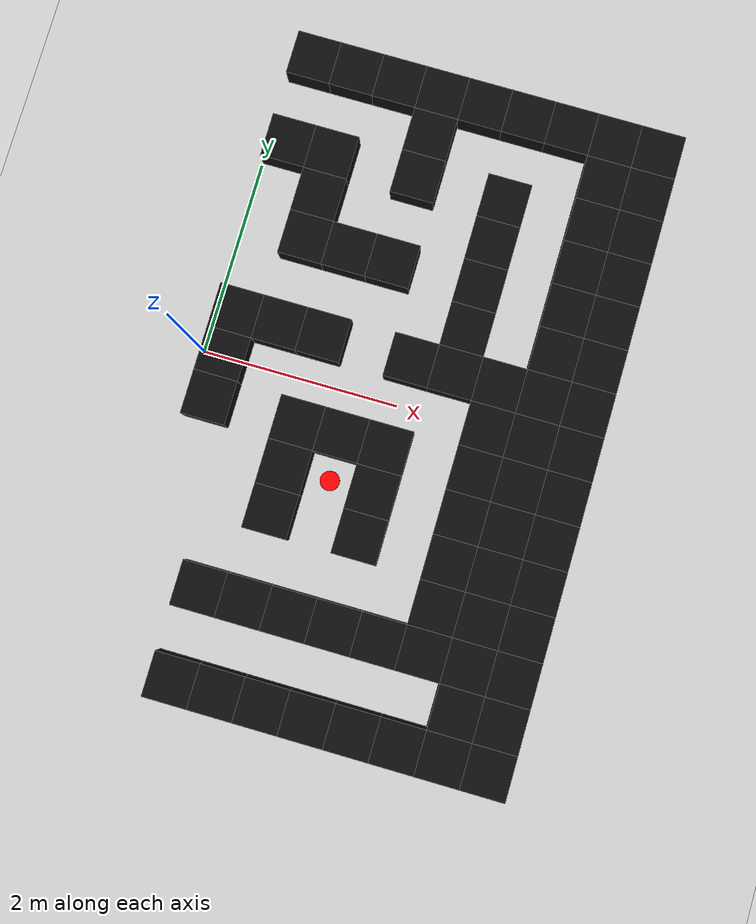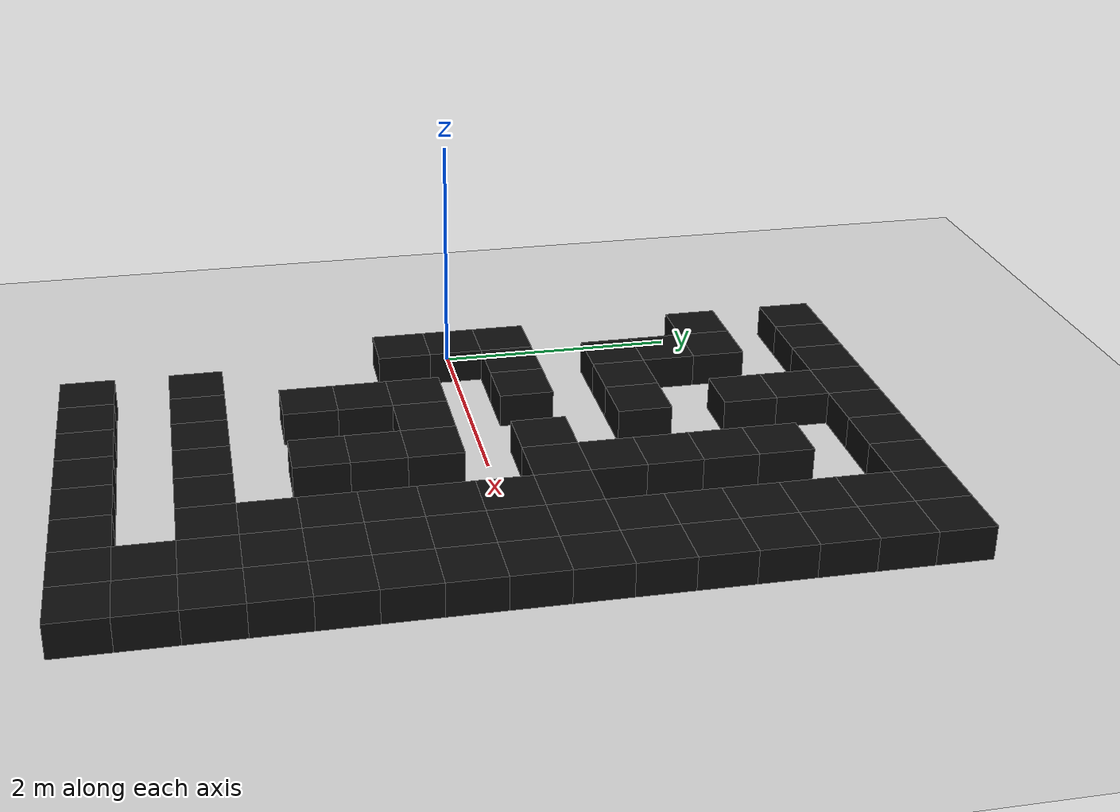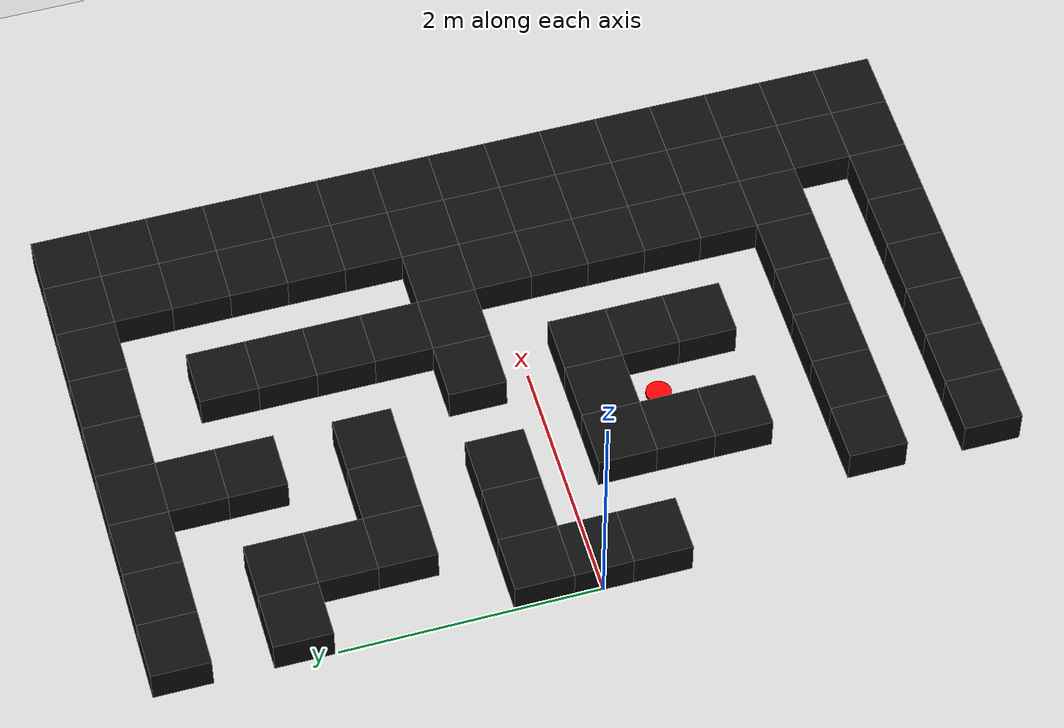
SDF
<sdf version="1.9">
 <world name="tangled_island_maze">
  <model name="ground_plane">
   <static>true</static>
   <link name="link">
    <collision name="collision">
     <geometry><plane><normal>0 0 1</normal><size>30 30</size></plane></geometry>
    </collision>
    <visual name="visual">
     <geometry><plane><normal>0 0 1</normal><size>30 30</size></plane></geometry>
     <material><ambient>0.82 0.82 0.82 1</ambient><diffuse>0.82 0.82 0.82 1</diffuse></material>
    </visual>
   </link>
  </model>
  <model name="wall_10">
   <static>true</static>
   <pose>0.675 -3.150 0.140 0 0 0</pose>
   <link name="link">
    <collision name="collision"><geometry><box><size>0.450 0.450 0.280</size></box></geometry></collision>
    <visual name="visual">
     <geometry><box><size>0.450 0.450 0.280</size></box></geometry>
     <material><ambient>0.05 0.05 0.05 1</ambient><diffuse>0.05 0.05 0.05 1</diffuse></material>
    </visual>
   </link>
  </model>
  <model name="wall_11">
   <static>true</static>
   <pose>1.125 -3.150 0.140 0 0 0</pose>
   <link name="link">
    <collision name="collision"><geometry><box><size>0.450 0.450 0.280</size></box></geometry></collision>
    <visual name="visual">
     <geometry><box><size>0.450 0.450 0.280</size></box></geometry>
     <material><ambient>0.05 0.05 0.05 1</ambient><diffuse>0.05 0.05 0.05 1</diffuse></material>
    </visual>
   </link>
  </model>
  <model name="wall_12">
   <static>true</static>
   <pose>1.575 -3.150 0.140 0 0 0</pose>
   <link name="link">
    <collision name="collision"><geometry><box><size>0.450 0.450 0.280</size></box></geometry></collision>
    <visual name="visual">
     <geometry><box><size>0.450 0.450 0.280</size></box></geometry>
     <material><ambient>0.05 0.05 0.05 1</ambient><diffuse>0.05 0.05 0.05 1</diffuse></material>
    </visual>
   </link>
  </model>
  <model name="wall_13">
   <static>true</static>
   <pose>2.025 -3.150 0.140 0 0 0</pose>
   <link name="link">
    <collision name="collision"><geometry><box><size>0.450 0.450 0.280</size></box></geometry></collision>
    <visual name="visual">
     <geometry><box><size>0.450 0.450 0.280</size></box></geometry>
     <material><ambient>0.05 0.05 0.05 1</ambient><diffuse>0.05 0.05 0.05 1</diffuse></material>
    </visual>
   </link>
  </model>
  <model name="wall_14">
   <static>true</static>
   <pose>2.475 -3.150 0.140 0 0 0</pose>
   <link name="link">
    <collision name="collision"><geometry><box><size>0.450 0.450 0.280</size></box></geometry></collision>
    <visual name="visual">
     <geometry><box><size>0.450 0.450 0.280</size></box></geometry>
     <material><ambient>0.05 0.05 0.05 1</ambient><diffuse>0.05 0.05 0.05 1</diffuse></material>
    </visual>
   </link>
  </model>
  <model name="wall_15">
   <static>true</static>
   <pose>2.925 -3.150 0.140 0 0 0</pose>
   <link name="link">
    <collision name="collision"><geometry><box><size>0.450 0.450 0.280</size></box></geometry></collision>
    <visual name="visual">
     <geometry><box><size>0.450 0.450 0.280</size></box></geometry>
     <material><ambient>0.05 0.05 0.05 1</ambient><diffuse>0.05 0.05 0.05 1</diffuse></material>
    </visual>
   </link>
  </model>
  <model name="wall_16">
   <static>true</static>
   <pose>3.375 -3.150 0.140 0 0 0</pose>
   <link name="link">
    <collision name="collision"><geometry><box><size>0.450 0.450 0.280</size></box></geometry></collision>
    <visual name="visual">
     <geometry><box><size>0.450 0.450 0.280</size></box></geometry>
     <material><ambient>0.05 0.05 0.05 1</ambient><diffuse>0.05 0.05 0.05 1</diffuse></material>
    </visual>
   </link>
  </model>
  <model name="wall_17">
   <static>true</static>
   <pose>3.825 -3.150 0.140 0 0 0</pose>
   <link name="link">
    <collision name="collision"><geometry><box><size>0.450 0.450 0.280</size></box></geometry></collision>
    <visual name="visual">
     <geometry><box><size>0.450 0.450 0.280</size></box></geometry>
     <material><ambient>0.05 0.05 0.05 1</ambient><diffuse>0.05 0.05 0.05 1</diffuse></material>
    </visual>
   </link>
  </model>
  <model name="wall_19">
   <static>true</static>
   <pose>3.375 -2.700 0.140 0 0 0</pose>
   <link name="link">
    <collision name="collision"><geometry><box><size>0.450 0.450 0.280</size></box></geometry></collision>
    <visual name="visual">
     <geometry><box><size>0.450 0.450 0.280</size></box></geometry>
     <material><ambient>0.05 0.05 0.05 1</ambient><diffuse>0.05 0.05 0.05 1</diffuse></material>
    </visual>
   </link>
  </model>
  <model name="wall_20">
   <static>true</static>
   <pose>3.825 -2.700 0.140 0 0 0</pose>
   <link name="link">
    <collision name="collision"><geometry><box><size>0.450 0.450 0.280</size></box></geometry></collision>
    <visual name="visual">
     <geometry><box><size>0.450 0.450 0.280</size></box></geometry>
     <material><ambient>0.05 0.05 0.05 1</ambient><diffuse>0.05 0.05 0.05 1</diffuse></material>
    </visual>
   </link>
  </model>
  <model name="wall_29">
   <static>true</static>
   <pose>0.675 -2.250 0.140 0 0 0</pose>
   <link name="link">
    <collision name="collision"><geometry><box><size>0.450 0.450 0.280</size></box></geometry></collision>
    <visual name="visual">
     <geometry><box><size>0.450 0.450 0.280</size></box></geometry>
     <material><ambient>0.05 0.05 0.05 1</ambient><diffuse>0.05 0.05 0.05 1</diffuse></material>
    </visual>
   </link>
  </model>
  <model name="wall_30">
   <static>true</static>
   <pose>1.125 -2.250 0.140 0 0 0</pose>
   <link name="link">
    <collision name="collision"><geometry><box><size>0.450 0.450 0.280</size></box></geometry></collision>
    <visual name="visual">
     <geometry><box><size>0.450 0.450 0.280</size></box></geometry>
     <material><ambient>0.05 0.05 0.05 1</ambient><diffuse>0.05 0.05 0.05 1</diffuse></material>
    </visual>
   </link>
  </model>
  <model name="wall_31">
   <static>true</static>
   <pose>1.575 -2.250 0.140 0 0 0</pose>
   <link name="link">
    <collision name="collision"><geometry><box><size>0.450 0.450 0.280</size></box></geometry></collision>
    <visual name="visual">
     <geometry><box><size>0.450 0.450 0.280</size></box></geometry>
     <material><ambient>0.05 0.05 0.05 1</ambient><diffuse>0.05 0.05 0.05 1</diffuse></material>
    </visual>
   </link>
  </model>
  <model name="wall_32">
   <static>true</static>
   <pose>2.025 -2.250 0.140 0 0 0</pose>
   <link name="link">
    <collision name="collision"><geometry><box><size>0.450 0.450 0.280</size></box></geometry></collision>
    <visual name="visual">
     <geometry><box><size>0.450 0.450 0.280</size></box></geometry>
     <material><ambient>0.05 0.05 0.05 1</ambient><diffuse>0.05 0.05 0.05 1</diffuse></material>
    </visual>
   </link>
  </model>
  <model name="wall_33">
   <static>true</static>
   <pose>2.475 -2.250 0.140 0 0 0</pose>
   <link name="link">
    <collision name="collision"><geometry><box><size>0.450 0.450 0.280</size></box></geometry></collision>
    <visual name="visual">
     <geometry><box><size>0.450 0.450 0.280</size></box></geometry>
     <material><ambient>0.05 0.05 0.05 1</ambient><diffuse>0.05 0.05 0.05 1</diffuse></material>
    </visual>
   </link>
  </model>
  <model name="wall_34">
   <static>true</static>
   <pose>2.925 -2.250 0.140 0 0 0</pose>
   <link name="link">
    <collision name="collision"><geometry><box><size>0.450 0.450 0.280</size></box></geometry></collision>
    <visual name="visual">
     <geometry><box><size>0.450 0.450 0.280</size></box></geometry>
     <material><ambient>0.05 0.05 0.05 1</ambient><diffuse>0.05 0.05 0.05 1</diffuse></material>
    </visual>
   </link>
  </model>
  <model name="wall_35">
   <static>true</static>
   <pose>3.375 -2.250 0.140 0 0 0</pose>
   <link name="link">
    <collision name="collision"><geometry><box><size>0.450 0.450 0.280</size></box></geometry></collision>
    <visual name="visual">
     <geometry><box><size>0.450 0.450 0.280</size></box></geometry>
     <material><ambient>0.05 0.05 0.05 1</ambient><diffuse>0.05 0.05 0.05 1</diffuse></material>
    </visual>
   </link>
  </model>
  <model name="wall_36">
   <static>true</static>
   <pose>3.825 -2.250 0.140 0 0 0</pose>
   <link name="link">
    <collision name="collision"><geometry><box><size>0.450 0.450 0.280</size></box></geometry></collision>
    <visual name="visual">
     <geometry><box><size>0.450 0.450 0.280</size></box></geometry>
     <material><ambient>0.05 0.05 0.05 1</ambient><diffuse>0.05 0.05 0.05 1</diffuse></material>
    </visual>
   </link>
  </model>
  <model name="wall_40">
   <static>true</static>
   <pose>2.925 -1.800 0.140 0 0 0</pose>
   <link name="link">
    <collision name="collision"><geometry><box><size>0.450 0.450 0.280</size></box></geometry></collision>
    <visual name="visual">
     <geometry><box><size>0.450 0.450 0.280</size></box></geometry>
     <material><ambient>0.05 0.05 0.05 1</ambient><diffuse>0.05 0.05 0.05 1</diffuse></material>
    </visual>
   </link>
  </model>
  <model name="wall_41">
   <static>true</static>
   <pose>3.375 -1.800 0.140 0 0 0</pose>
   <link name="link">
    <collision name="collision"><geometry><box><size>0.450 0.450 0.280</size></box></geometry></collision>
    <visual name="visual">
     <geometry><box><size>0.450 0.450 0.280</size></box></geometry>
     <material><ambient>0.05 0.05 0.05 1</ambient><diffuse>0.05 0.05 0.05 1</diffuse></material>
    </visual>
   </link>
  </model>
  <model name="wall_42">
   <static>true</static>
   <pose>3.825 -1.800 0.140 0 0 0</pose>
   <link name="link">
    <collision name="collision"><geometry><box><size>0.450 0.450 0.280</size></box></geometry></collision>
    <visual name="visual">
     <geometry><box><size>0.450 0.450 0.280</size></box></geometry>
     <material><ambient>0.05 0.05 0.05 1</ambient><diffuse>0.05 0.05 0.05 1</diffuse></material>
    </visual>
   </link>
  </model>
  <model name="wall_52">
   <static>true</static>
   <pose>1.125 -1.350 0.140 0 0 0</pose>
   <link name="link">
    <collision name="collision"><geometry><box><size>0.450 0.450 0.280</size></box></geometry></collision>
    <visual name="visual">
     <geometry><box><size>0.450 0.450 0.280</size></box></geometry>
     <material><ambient>0.05 0.05 0.05 1</ambient><diffuse>0.05 0.05 0.05 1</diffuse></material>
    </visual>
   </link>
  </model>
  <model name="wall_53">
   <static>true</static>
   <pose>2.025 -1.350 0.140 0 0 0</pose>
   <link name="link">
    <collision name="collision"><geometry><box><size>0.450 0.450 0.280</size></box></geometry></collision>
    <visual name="visual">
     <geometry><box><size>0.450 0.450 0.280</size></box></geometry>
     <material><ambient>0.05 0.05 0.05 1</ambient><diffuse>0.05 0.05 0.05 1</diffuse></material>
    </visual>
   </link>
  </model>
  <model name="wall_54">
   <static>true</static>
   <pose>2.925 -1.350 0.140 0 0 0</pose>
   <link name="link">
    <collision name="collision"><geometry><box><size>0.450 0.450 0.280</size></box></geometry></collision>
    <visual name="visual">
     <geometry><box><size>0.450 0.450 0.280</size></box></geometry>
     <material><ambient>0.05 0.05 0.05 1</ambient><diffuse>0.05 0.05 0.05 1</diffuse></material>
    </visual>
   </link>
  </model>
  <model name="wall_55">
   <static>true</static>
   <pose>3.375 -1.350 0.140 0 0 0</pose>
   <link name="link">
    <collision name="collision"><geometry><box><size>0.450 0.450 0.280</size></box></geometry></collision>
    <visual name="visual">
     <geometry><box><size>0.450 0.450 0.280</size></box></geometry>
     <material><ambient>0.05 0.05 0.05 1</ambient><diffuse>0.05 0.05 0.05 1</diffuse></material>
    </visual>
   </link>
  </model>
  <model name="wall_56">
   <static>true</static>
   <pose>3.825 -1.350 0.140 0 0 0</pose>
   <link name="link">
    <collision name="collision"><geometry><box><size>0.450 0.450 0.280</size></box></geometry></collision>
    <visual name="visual">
     <geometry><box><size>0.450 0.450 0.280</size></box></geometry>
     <material><ambient>0.05 0.05 0.05 1</ambient><diffuse>0.05 0.05 0.05 1</diffuse></material>
    </visual>
   </link>
  </model>
  <model name="wall_60">
   <static>true</static>
   <pose>1.125 -0.900 0.140 0 0 0</pose>
   <link name="link">
    <collision name="collision"><geometry><box><size>0.450 0.450 0.280</size></box></geometry></collision>
    <visual name="visual">
     <geometry><box><size>0.450 0.450 0.280</size></box></geometry>
     <material><ambient>0.05 0.05 0.05 1</ambient><diffuse>0.05 0.05 0.05 1</diffuse></material>
    </visual>
   </link>
  </model>
  <model name="wall_61">
   <static>true</static>
   <pose>2.025 -0.900 0.140 0 0 0</pose>
   <link name="link">
    <collision name="collision"><geometry><box><size>0.450 0.450 0.280</size></box></geometry></collision>
    <visual name="visual">
     <geometry><box><size>0.450 0.450 0.280</size></box></geometry>
     <material><ambient>0.05 0.05 0.05 1</ambient><diffuse>0.05 0.05 0.05 1</diffuse></material>
    </visual>
   </link>
  </model>
  <model name="wall_62">
   <static>true</static>
   <pose>2.925 -0.900 0.140 0 0 0</pose>
   <link name="link">
    <collision name="collision"><geometry><box><size>0.450 0.450 0.280</size></box></geometry></collision>
    <visual name="visual">
     <geometry><box><size>0.450 0.450 0.280</size></box></geometry>
     <material><ambient>0.05 0.05 0.05 1</ambient><diffuse>0.05 0.05 0.05 1</diffuse></material>
    </visual>
   </link>
  </model>
  <model name="wall_63">
   <static>true</static>
   <pose>3.375 -0.900 0.140 0 0 0</pose>
   <link name="link">
    <collision name="collision"><geometry><box><size>0.450 0.450 0.280</size></box></geometry></collision>
    <visual name="visual">
     <geometry><box><size>0.450 0.450 0.280</size></box></geometry>
     <material><ambient>0.05 0.05 0.05 1</ambient><diffuse>0.05 0.05 0.05 1</diffuse></material>
    </visual>
   </link>
  </model>
  <model name="wall_64">
   <static>true</static>
   <pose>3.825 -0.900 0.140 0 0 0</pose>
   <link name="link">
    <collision name="collision"><geometry><box><size>0.450 0.450 0.280</size></box></geometry></collision>
    <visual name="visual">
     <geometry><box><size>0.450 0.450 0.280</size></box></geometry>
     <material><ambient>0.05 0.05 0.05 1</ambient><diffuse>0.05 0.05 0.05 1</diffuse></material>
    </visual>
   </link>
  </model>
  <model name="wall_72">
   <static>true</static>
   <pose>0.225 -0.450 0.140 0 0 0</pose>
   <link name="link">
    <collision name="collision"><geometry><box><size>0.450 0.450 0.280</size></box></geometry></collision>
    <visual name="visual">
     <geometry><box><size>0.450 0.450 0.280</size></box></geometry>
     <material><ambient>0.05 0.05 0.05 1</ambient><diffuse>0.05 0.05 0.05 1</diffuse></material>
    </visual>
   </link>
  </model>
  <model name="wall_73">
   <static>true</static>
   <pose>1.125 -0.450 0.140 0 0 0</pose>
   <link name="link">
    <collision name="collision"><geometry><box><size>0.450 0.450 0.280</size></box></geometry></collision>
    <visual name="visual">
     <geometry><box><size>0.450 0.450 0.280</size></box></geometry>
     <material><ambient>0.05 0.05 0.05 1</ambient><diffuse>0.05 0.05 0.05 1</diffuse></material>
    </visual>
   </link>
  </model>
  <model name="wall_74">
   <static>true</static>
   <pose>1.575 -0.450 0.140 0 0 0</pose>
   <link name="link">
    <collision name="collision"><geometry><box><size>0.450 0.450 0.280</size></box></geometry></collision>
    <visual name="visual">
     <geometry><box><size>0.450 0.450 0.280</size></box></geometry>
     <material><ambient>0.05 0.05 0.05 1</ambient><diffuse>0.05 0.05 0.05 1</diffuse></material>
    </visual>
   </link>
  </model>
  <model name="wall_75">
   <static>true</static>
   <pose>2.025 -0.450 0.140 0 0 0</pose>
   <link name="link">
    <collision name="collision"><geometry><box><size>0.450 0.450 0.280</size></box></geometry></collision>
    <visual name="visual">
     <geometry><box><size>0.450 0.450 0.280</size></box></geometry>
     <material><ambient>0.05 0.05 0.05 1</ambient><diffuse>0.05 0.05 0.05 1</diffuse></material>
    </visual>
   </link>
  </model>
  <model name="wall_76">
   <static>true</static>
   <pose>2.925 -0.450 0.140 0 0 0</pose>
   <link name="link">
    <collision name="collision"><geometry><box><size>0.450 0.450 0.280</size></box></geometry></collision>
    <visual name="visual">
     <geometry><box><size>0.450 0.450 0.280</size></box></geometry>
     <material><ambient>0.05 0.05 0.05 1</ambient><diffuse>0.05 0.05 0.05 1</diffuse></material>
    </visual>
   </link>
  </model>
  <model name="wall_77">
   <static>true</static>
   <pose>3.375 -0.450 0.140 0 0 0</pose>
   <link name="link">
    <collision name="collision"><geometry><box><size>0.450 0.450 0.280</size></box></geometry></collision>
    <visual name="visual">
     <geometry><box><size>0.450 0.450 0.280</size></box></geometry>
     <material><ambient>0.05 0.05 0.05 1</ambient><diffuse>0.05 0.05 0.05 1</diffuse></material>
    </visual>
   </link>
  </model>
  <model name="wall_78">
   <static>true</static>
   <pose>3.825 -0.450 0.140 0 0 0</pose>
   <link name="link">
    <collision name="collision"><geometry><box><size>0.450 0.450 0.280</size></box></geometry></collision>
    <visual name="visual">
     <geometry><box><size>0.450 0.450 0.280</size></box></geometry>
     <material><ambient>0.05 0.05 0.05 1</ambient><diffuse>0.05 0.05 0.05 1</diffuse></material>
    </visual>
   </link>
  </model>
  <model name="wall_82">
   <static>true</static>
   <pose>0.225 0.000 0.140 0 0 0</pose>
   <link name="link">
    <collision name="collision"><geometry><box><size>0.450 0.450 0.280</size></box></geometry></collision>
    <visual name="visual">
     <geometry><box><size>0.450 0.450 0.280</size></box></geometry>
     <material><ambient>0.05 0.05 0.05 1</ambient><diffuse>0.05 0.05 0.05 1</diffuse></material>
    </visual>
   </link>
  </model>
  <model name="wall_83">
   <static>true</static>
   <pose>2.925 0.000 0.140 0 0 0</pose>
   <link name="link">
    <collision name="collision"><geometry><box><size>0.450 0.450 0.280</size></box></geometry></collision>
    <visual name="visual">
     <geometry><box><size>0.450 0.450 0.280</size></box></geometry>
     <material><ambient>0.05 0.05 0.05 1</ambient><diffuse>0.05 0.05 0.05 1</diffuse></material>
    </visual>
   </link>
  </model>
  <model name="wall_84">
   <static>true</static>
   <pose>3.375 0.000 0.140 0 0 0</pose>
   <link name="link">
    <collision name="collision"><geometry><box><size>0.450 0.450 0.280</size></box></geometry></collision>
    <visual name="visual">
     <geometry><box><size>0.450 0.450 0.280</size></box></geometry>
     <material><ambient>0.05 0.05 0.05 1</ambient><diffuse>0.05 0.05 0.05 1</diffuse></material>
    </visual>
   </link>
  </model>
  <model name="wall_85">
   <static>true</static>
   <pose>3.825 0.000 0.140 0 0 0</pose>
   <link name="link">
    <collision name="collision"><geometry><box><size>0.450 0.450 0.280</size></box></geometry></collision>
    <visual name="visual">
     <geometry><box><size>0.450 0.450 0.280</size></box></geometry>
     <material><ambient>0.05 0.05 0.05 1</ambient><diffuse>0.05 0.05 0.05 1</diffuse></material>
    </visual>
   </link>
  </model>
  <model name="wall_91">
   <static>true</static>
   <pose>0.225 0.450 0.140 0 0 0</pose>
   <link name="link">
    <collision name="collision"><geometry><box><size>0.450 0.450 0.280</size></box></geometry></collision>
    <visual name="visual">
     <geometry><box><size>0.450 0.450 0.280</size></box></geometry>
     <material><ambient>0.05 0.05 0.05 1</ambient><diffuse>0.05 0.05 0.05 1</diffuse></material>
    </visual>
   </link>
  </model>
  <model name="wall_92">
   <static>true</static>
   <pose>0.675 0.450 0.140 0 0 0</pose>
   <link name="link">
    <collision name="collision"><geometry><box><size>0.450 0.450 0.280</size></box></geometry></collision>
    <visual name="visual">
     <geometry><box><size>0.450 0.450 0.280</size></box></geometry>
     <material><ambient>0.05 0.05 0.05 1</ambient><diffuse>0.05 0.05 0.05 1</diffuse></material>
    </visual>
   </link>
  </model>
  <model name="wall_93">
   <static>true</static>
   <pose>1.125 0.450 0.140 0 0 0</pose>
   <link name="link">
    <collision name="collision"><geometry><box><size>0.450 0.450 0.280</size></box></geometry></collision>
    <visual name="visual">
     <geometry><box><size>0.450 0.450 0.280</size></box></geometry>
     <material><ambient>0.05 0.05 0.05 1</ambient><diffuse>0.05 0.05 0.05 1</diffuse></material>
    </visual>
   </link>
  </model>
  <model name="wall_94">
   <static>true</static>
   <pose>2.025 0.450 0.140 0 0 0</pose>
   <link name="link">
    <collision name="collision"><geometry><box><size>0.450 0.450 0.280</size></box></geometry></collision>
    <visual name="visual">
     <geometry><box><size>0.450 0.450 0.280</size></box></geometry>
     <material><ambient>0.05 0.05 0.05 1</ambient><diffuse>0.05 0.05 0.05 1</diffuse></material>
    </visual>
   </link>
  </model>
  <model name="wall_95">
   <static>true</static>
   <pose>2.475 0.450 0.140 0 0 0</pose>
   <link name="link">
    <collision name="collision"><geometry><box><size>0.450 0.450 0.280</size></box></geometry></collision>
    <visual name="visual">
     <geometry><box><size>0.450 0.450 0.280</size></box></geometry>
     <material><ambient>0.05 0.05 0.05 1</ambient><diffuse>0.05 0.05 0.05 1</diffuse></material>
    </visual>
   </link>
  </model>
  <model name="wall_96">
   <static>true</static>
   <pose>2.925 0.450 0.140 0 0 0</pose>
   <link name="link">
    <collision name="collision"><geometry><box><size>0.450 0.450 0.280</size></box></geometry></collision>
    <visual name="visual">
     <geometry><box><size>0.450 0.450 0.280</size></box></geometry>
     <material><ambient>0.05 0.05 0.05 1</ambient><diffuse>0.05 0.05 0.05 1</diffuse></material>
    </visual>
   </link>
  </model>
  <model name="wall_97">
   <static>true</static>
   <pose>3.375 0.450 0.140 0 0 0</pose>
   <link name="link">
    <collision name="collision"><geometry><box><size>0.450 0.450 0.280</size></box></geometry></collision>
    <visual name="visual">
     <geometry><box><size>0.450 0.450 0.280</size></box></geometry>
     <material><ambient>0.05 0.05 0.05 1</ambient><diffuse>0.05 0.05 0.05 1</diffuse></material>
    </visual>
   </link>
  </model>
  <model name="wall_98">
   <static>true</static>
   <pose>3.825 0.450 0.140 0 0 0</pose>
   <link name="link">
    <collision name="collision"><geometry><box><size>0.450 0.450 0.280</size></box></geometry></collision>
    <visual name="visual">
     <geometry><box><size>0.450 0.450 0.280</size></box></geometry>
     <material><ambient>0.05 0.05 0.05 1</ambient><diffuse>0.05 0.05 0.05 1</diffuse></material>
    </visual>
   </link>
  </model>
  <model name="wall_103">
   <static>true</static>
   <pose>2.475 0.900 0.140 0 0 0</pose>
   <link name="link">
    <collision name="collision"><geometry><box><size>0.450 0.450 0.280</size></box></geometry></collision>
    <visual name="visual">
     <geometry><box><size>0.450 0.450 0.280</size></box></geometry>
     <material><ambient>0.05 0.05 0.05 1</ambient><diffuse>0.05 0.05 0.05 1</diffuse></material>
    </visual>
   </link>
  </model>
  <model name="wall_104">
   <static>true</static>
   <pose>3.375 0.900 0.140 0 0 0</pose>
   <link name="link">
    <collision name="collision"><geometry><box><size>0.450 0.450 0.280</size></box></geometry></collision>
    <visual name="visual">
     <geometry><box><size>0.450 0.450 0.280</size></box></geometry>
     <material><ambient>0.05 0.05 0.05 1</ambient><diffuse>0.05 0.05 0.05 1</diffuse></material>
    </visual>
   </link>
  </model>
  <model name="wall_105">
   <static>true</static>
   <pose>3.825 0.900 0.140 0 0 0</pose>
   <link name="link">
    <collision name="collision"><geometry><box><size>0.450 0.450 0.280</size></box></geometry></collision>
    <visual name="visual">
     <geometry><box><size>0.450 0.450 0.280</size></box></geometry>
     <material><ambient>0.05 0.05 0.05 1</ambient><diffuse>0.05 0.05 0.05 1</diffuse></material>
    </visual>
   </link>
  </model>
  <model name="wall_113">
   <static>true</static>
   <pose>0.675 1.350 0.140 0 0 0</pose>
   <link name="link">
    <collision name="collision"><geometry><box><size>0.450 0.450 0.280</size></box></geometry></collision>
    <visual name="visual">
     <geometry><box><size>0.450 0.450 0.280</size></box></geometry>
     <material><ambient>0.05 0.05 0.05 1</ambient><diffuse>0.05 0.05 0.05 1</diffuse></material>
    </visual>
   </link>
  </model>
  <model name="wall_114">
   <static>true</static>
   <pose>1.125 1.350 0.140 0 0 0</pose>
   <link name="link">
    <collision name="collision"><geometry><box><size>0.450 0.450 0.280</size></box></geometry></collision>
    <visual name="visual">
     <geometry><box><size>0.450 0.450 0.280</size></box></geometry>
     <material><ambient>0.05 0.05 0.05 1</ambient><diffuse>0.05 0.05 0.05 1</diffuse></material>
    </visual>
   </link>
  </model>
  <model name="wall_115">
   <static>true</static>
   <pose>1.575 1.350 0.140 0 0 0</pose>
   <link name="link">
    <collision name="collision"><geometry><box><size>0.450 0.450 0.280</size></box></geometry></collision>
    <visual name="visual">
     <geometry><box><size>0.450 0.450 0.280</size></box></geometry>
     <material><ambient>0.05 0.05 0.05 1</ambient><diffuse>0.05 0.05 0.05 1</diffuse></material>
    </visual>
   </link>
  </model>
  <model name="wall_116">
   <static>true</static>
   <pose>2.475 1.350 0.140 0 0 0</pose>
   <link name="link">
    <collision name="collision"><geometry><box><size>0.450 0.450 0.280</size></box></geometry></collision>
    <visual name="visual">
     <geometry><box><size>0.450 0.450 0.280</size></box></geometry>
     <material><ambient>0.05 0.05 0.05 1</ambient><diffuse>0.05 0.05 0.05 1</diffuse></material>
    </visual>
   </link>
  </model>
  <model name="wall_117">
   <static>true</static>
   <pose>3.375 1.350 0.140 0 0 0</pose>
   <link name="link">
    <collision name="collision"><geometry><box><size>0.450 0.450 0.280</size></box></geometry></collision>
    <visual name="visual">
     <geometry><box><size>0.450 0.450 0.280</size></box></geometry>
     <material><ambient>0.05 0.05 0.05 1</ambient><diffuse>0.05 0.05 0.05 1</diffuse></material>
    </visual>
   </link>
  </model>
  <model name="wall_118">
   <static>true</static>
   <pose>3.825 1.350 0.140 0 0 0</pose>
   <link name="link">
    <collision name="collision"><geometry><box><size>0.450 0.450 0.280</size></box></geometry></collision>
    <visual name="visual">
     <geometry><box><size>0.450 0.450 0.280</size></box></geometry>
     <material><ambient>0.05 0.05 0.05 1</ambient><diffuse>0.05 0.05 0.05 1</diffuse></material>
    </visual>
   </link>
  </model>
  <model name="wall_121">
   <static>true</static>
   <pose>0.675 1.800 0.140 0 0 0</pose>
   <link name="link">
    <collision name="collision"><geometry><box><size>0.450 0.450 0.280</size></box></geometry></collision>
    <visual name="visual">
     <geometry><box><size>0.450 0.450 0.280</size></box></geometry>
     <material><ambient>0.05 0.05 0.05 1</ambient><diffuse>0.05 0.05 0.05 1</diffuse></material>
    </visual>
   </link>
  </model>
  <model name="wall_122">
   <static>true</static>
   <pose>2.475 1.800 0.140 0 0 0</pose>
   <link name="link">
    <collision name="collision"><geometry><box><size>0.450 0.450 0.280</size></box></geometry></collision>
    <visual name="visual">
     <geometry><box><size>0.450 0.450 0.280</size></box></geometry>
     <material><ambient>0.05 0.05 0.05 1</ambient><diffuse>0.05 0.05 0.05 1</diffuse></material>
    </visual>
   </link>
  </model>
  <model name="wall_123">
   <static>true</static>
   <pose>3.375 1.800 0.140 0 0 0</pose>
   <link name="link">
    <collision name="collision"><geometry><box><size>0.450 0.450 0.280</size></box></geometry></collision>
    <visual name="visual">
     <geometry><box><size>0.450 0.450 0.280</size></box></geometry>
     <material><ambient>0.05 0.05 0.05 1</ambient><diffuse>0.05 0.05 0.05 1</diffuse></material>
    </visual>
   </link>
  </model>
  <model name="wall_124">
   <static>true</static>
   <pose>3.825 1.800 0.140 0 0 0</pose>
   <link name="link">
    <collision name="collision"><geometry><box><size>0.450 0.450 0.280</size></box></geometry></collision>
    <visual name="visual">
     <geometry><box><size>0.450 0.450 0.280</size></box></geometry>
     <material><ambient>0.05 0.05 0.05 1</ambient><diffuse>0.05 0.05 0.05 1</diffuse></material>
    </visual>
   </link>
  </model>
  <model name="wall_132">
   <static>true</static>
   <pose>0.225 2.250 0.140 0 0 0</pose>
   <link name="link">
    <collision name="collision"><geometry><box><size>0.450 0.450 0.280</size></box></geometry></collision>
    <visual name="visual">
     <geometry><box><size>0.450 0.450 0.280</size></box></geometry>
     <material><ambient>0.05 0.05 0.05 1</ambient><diffuse>0.05 0.05 0.05 1</diffuse></material>
    </visual>
   </link>
  </model>
  <model name="wall_133">
   <static>true</static>
   <pose>0.675 2.250 0.140 0 0 0</pose>
   <link name="link">
    <collision name="collision"><geometry><box><size>0.450 0.450 0.280</size></box></geometry></collision>
    <visual name="visual">
     <geometry><box><size>0.450 0.450 0.280</size></box></geometry>
     <material><ambient>0.05 0.05 0.05 1</ambient><diffuse>0.05 0.05 0.05 1</diffuse></material>
    </visual>
   </link>
  </model>
  <model name="wall_134">
   <static>true</static>
   <pose>1.575 2.250 0.140 0 0 0</pose>
   <link name="link">
    <collision name="collision"><geometry><box><size>0.450 0.450 0.280</size></box></geometry></collision>
    <visual name="visual">
     <geometry><box><size>0.450 0.450 0.280</size></box></geometry>
     <material><ambient>0.05 0.05 0.05 1</ambient><diffuse>0.05 0.05 0.05 1</diffuse></material>
    </visual>
   </link>
  </model>
  <model name="wall_135">
   <static>true</static>
   <pose>2.475 2.250 0.140 0 0 0</pose>
   <link name="link">
    <collision name="collision"><geometry><box><size>0.450 0.450 0.280</size></box></geometry></collision>
    <visual name="visual">
     <geometry><box><size>0.450 0.450 0.280</size></box></geometry>
     <material><ambient>0.05 0.05 0.05 1</ambient><diffuse>0.05 0.05 0.05 1</diffuse></material>
    </visual>
   </link>
  </model>
  <model name="wall_136">
   <static>true</static>
   <pose>3.375 2.250 0.140 0 0 0</pose>
   <link name="link">
    <collision name="collision"><geometry><box><size>0.450 0.450 0.280</size></box></geometry></collision>
    <visual name="visual">
     <geometry><box><size>0.450 0.450 0.280</size></box></geometry>
     <material><ambient>0.05 0.05 0.05 1</ambient><diffuse>0.05 0.05 0.05 1</diffuse></material>
    </visual>
   </link>
  </model>
  <model name="wall_137">
   <static>true</static>
   <pose>3.825 2.250 0.140 0 0 0</pose>
   <link name="link">
    <collision name="collision"><geometry><box><size>0.450 0.450 0.280</size></box></geometry></collision>
    <visual name="visual">
     <geometry><box><size>0.450 0.450 0.280</size></box></geometry>
     <material><ambient>0.05 0.05 0.05 1</ambient><diffuse>0.05 0.05 0.05 1</diffuse></material>
    </visual>
   </link>
  </model>
  <model name="wall_140">
   <static>true</static>
   <pose>1.575 2.700 0.140 0 0 0</pose>
   <link name="link">
    <collision name="collision"><geometry><box><size>0.450 0.450 0.280</size></box></geometry></collision>
    <visual name="visual">
     <geometry><box><size>0.450 0.450 0.280</size></box></geometry>
     <material><ambient>0.05 0.05 0.05 1</ambient><diffuse>0.05 0.05 0.05 1</diffuse></material>
    </visual>
   </link>
  </model>
  <model name="wall_141">
   <static>true</static>
   <pose>3.375 2.700 0.140 0 0 0</pose>
   <link name="link">
    <collision name="collision"><geometry><box><size>0.450 0.450 0.280</size></box></geometry></collision>
    <visual name="visual">
     <geometry><box><size>0.450 0.450 0.280</size></box></geometry>
     <material><ambient>0.05 0.05 0.05 1</ambient><diffuse>0.05 0.05 0.05 1</diffuse></material>
    </visual>
   </link>
  </model>
  <model name="wall_142">
   <static>true</static>
   <pose>3.825 2.700 0.140 0 0 0</pose>
   <link name="link">
    <collision name="collision"><geometry><box><size>0.450 0.450 0.280</size></box></geometry></collision>
    <visual name="visual">
     <geometry><box><size>0.450 0.450 0.280</size></box></geometry>
     <material><ambient>0.05 0.05 0.05 1</ambient><diffuse>0.05 0.05 0.05 1</diffuse></material>
    </visual>
   </link>
  </model>
  <model name="wall_152">
   <static>true</static>
   <pose>0.225 3.150 0.140 0 0 0</pose>
   <link name="link">
    <collision name="collision"><geometry><box><size>0.450 0.450 0.280</size></box></geometry></collision>
    <visual name="visual">
     <geometry><box><size>0.450 0.450 0.280</size></box></geometry>
     <material><ambient>0.05 0.05 0.05 1</ambient><diffuse>0.05 0.05 0.05 1</diffuse></material>
    </visual>
   </link>
  </model>
  <model name="wall_153">
   <static>true</static>
   <pose>0.675 3.150 0.140 0 0 0</pose>
   <link name="link">
    <collision name="collision"><geometry><box><size>0.450 0.450 0.280</size></box></geometry></collision>
    <visual name="visual">
     <geometry><box><size>0.450 0.450 0.280</size></box></geometry>
     <material><ambient>0.05 0.05 0.05 1</ambient><diffuse>0.05 0.05 0.05 1</diffuse></material>
    </visual>
   </link>
  </model>
  <model name="wall_154">
   <static>true</static>
   <pose>1.125 3.150 0.140 0 0 0</pose>
   <link name="link">
    <collision name="collision"><geometry><box><size>0.450 0.450 0.280</size></box></geometry></collision>
    <visual name="visual">
     <geometry><box><size>0.450 0.450 0.280</size></box></geometry>
     <material><ambient>0.05 0.05 0.05 1</ambient><diffuse>0.05 0.05 0.05 1</diffuse></material>
    </visual>
   </link>
  </model>
  <model name="wall_155">
   <static>true</static>
   <pose>1.575 3.150 0.140 0 0 0</pose>
   <link name="link">
    <collision name="collision"><geometry><box><size>0.450 0.450 0.280</size></box></geometry></collision>
    <visual name="visual">
     <geometry><box><size>0.450 0.450 0.280</size></box></geometry>
     <material><ambient>0.05 0.05 0.05 1</ambient><diffuse>0.05 0.05 0.05 1</diffuse></material>
    </visual>
   </link>
  </model>
  <model name="wall_156">
   <static>true</static>
   <pose>2.025 3.150 0.140 0 0 0</pose>
   <link name="link">
    <collision name="collision"><geometry><box><size>0.450 0.450 0.280</size></box></geometry></collision>
    <visual name="visual">
     <geometry><box><size>0.450 0.450 0.280</size></box></geometry>
     <material><ambient>0.05 0.05 0.05 1</ambient><diffuse>0.05 0.05 0.05 1</diffuse></material>
    </visual>
   </link>
  </model>
  <model name="wall_157">
   <static>true</static>
   <pose>2.475 3.150 0.140 0 0 0</pose>
   <link name="link">
    <collision name="collision"><geometry><box><size>0.450 0.450 0.280</size></box></geometry></collision>
    <visual name="visual">
     <geometry><box><size>0.450 0.450 0.280</size></box></geometry>
     <material><ambient>0.05 0.05 0.05 1</ambient><diffuse>0.05 0.05 0.05 1</diffuse></material>
    </visual>
   </link>
  </model>
  <model name="wall_158">
   <static>true</static>
   <pose>2.925 3.150 0.140 0 0 0</pose>
   <link name="link">
    <collision name="collision"><geometry><box><size>0.450 0.450 0.280</size></box></geometry></collision>
    <visual name="visual">
     <geometry><box><size>0.450 0.450 0.280</size></box></geometry>
     <material><ambient>0.05 0.05 0.05 1</ambient><diffuse>0.05 0.05 0.05 1</diffuse></material>
    </visual>
   </link>
  </model>
  <model name="wall_159">
   <static>true</static>
   <pose>3.375 3.150 0.140 0 0 0</pose>
   <link name="link">
    <collision name="collision"><geometry><box><size>0.450 0.450 0.280</size></box></geometry></collision>
    <visual name="visual">
     <geometry><box><size>0.450 0.450 0.280</size></box></geometry>
     <material><ambient>0.05 0.05 0.05 1</ambient><diffuse>0.05 0.05 0.05 1</diffuse></material>
    </visual>
   </link>
  </model>
  <model name="wall_160">
   <static>true</static>
   <pose>3.825 3.150 0.140 0 0 0</pose>
   <link name="link">
    <collision name="collision"><geometry><box><size>0.450 0.450 0.280</size></box></geometry></collision>
    <visual name="visual">
     <geometry><box><size>0.450 0.450 0.280</size></box></geometry>
     <material><ambient>0.05 0.05 0.05 1</ambient><diffuse>0.05 0.05 0.05 1</diffuse></material>
    </visual>
   </link>
  </model>
  <model name="goal_marker">
   <static>true</static>
   <pose>1.575 -0.900 0.012 0 0 0</pose>
   <link name="link">
    <visual name="visual">
     <geometry><cylinder><radius>0.099</radius><length>0.024</length></cylinder></geometry>
     <material><ambient>1 0 0 1</ambient><diffuse>1 0 0 1</diffuse></material>
    </visual>
   </link>
  </model>
 </world>
</sdf>
